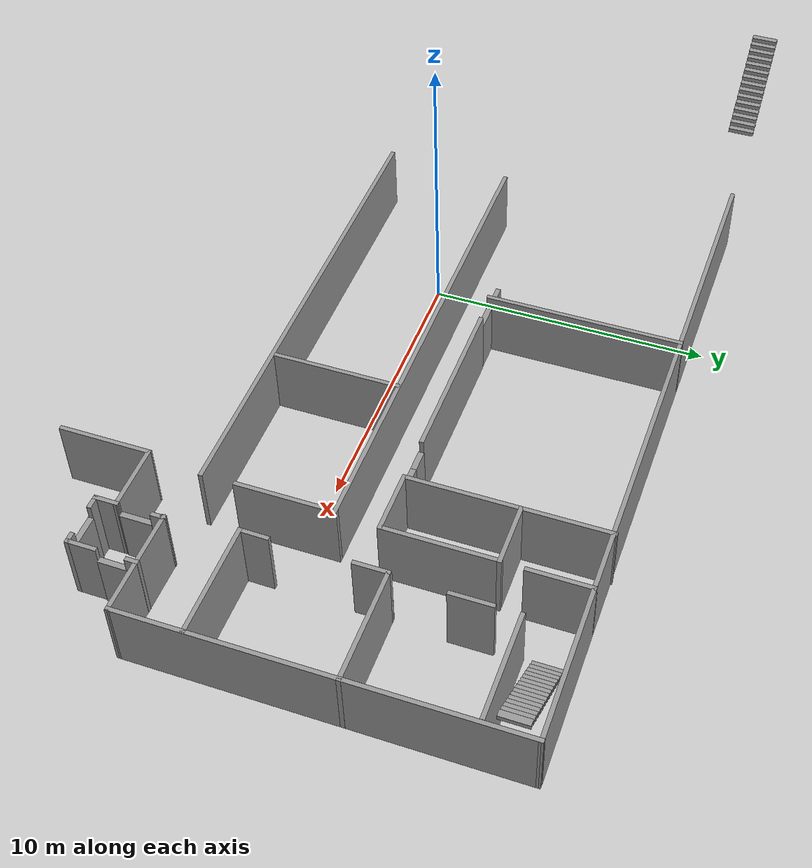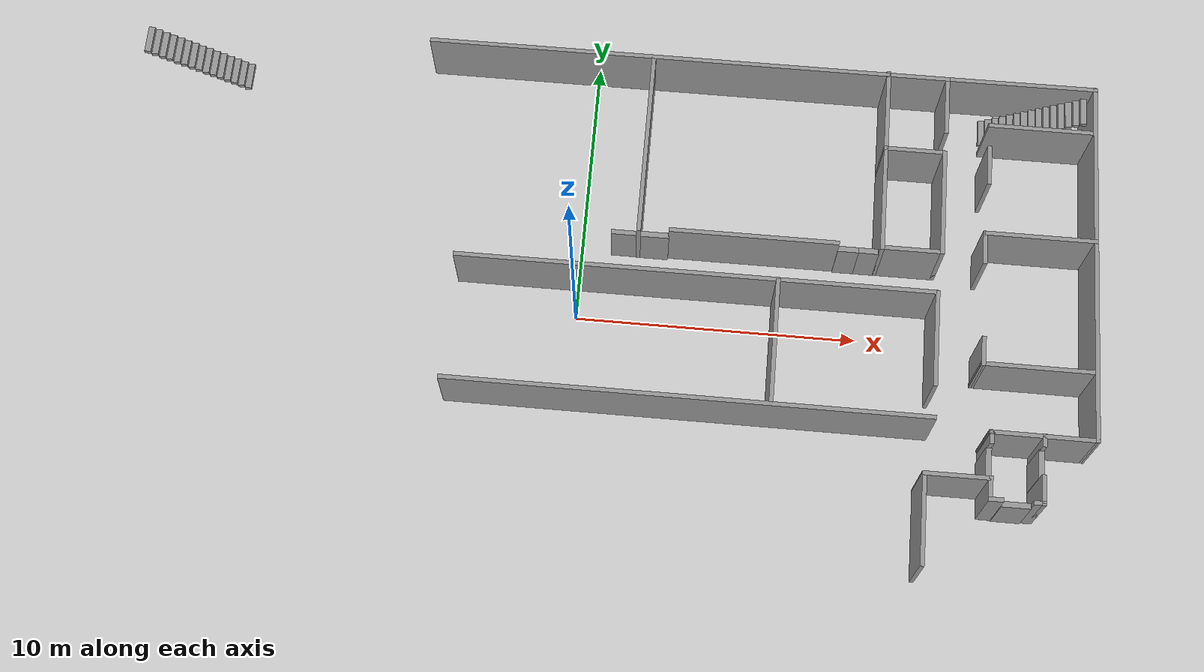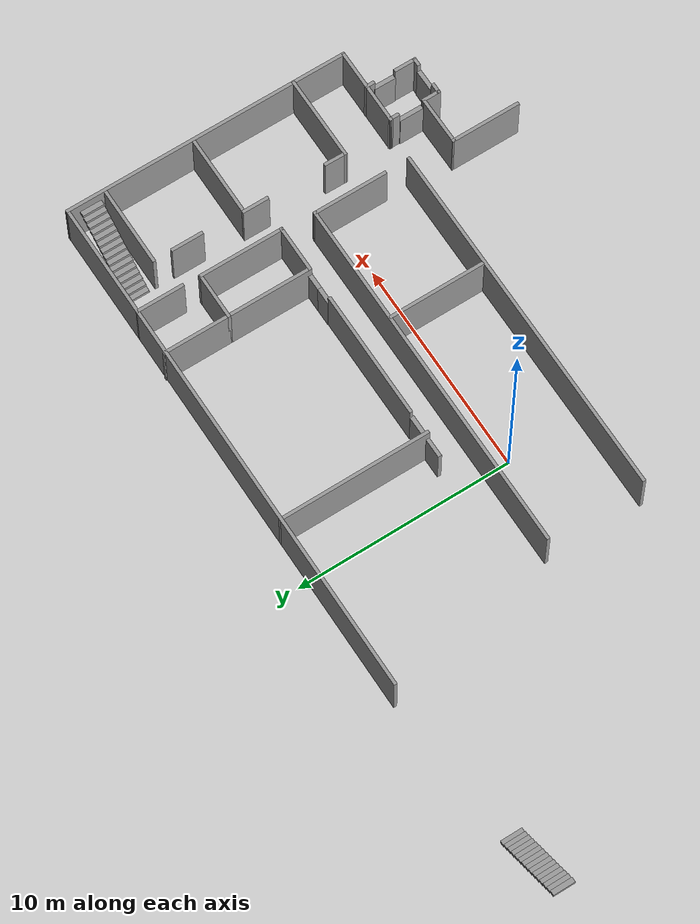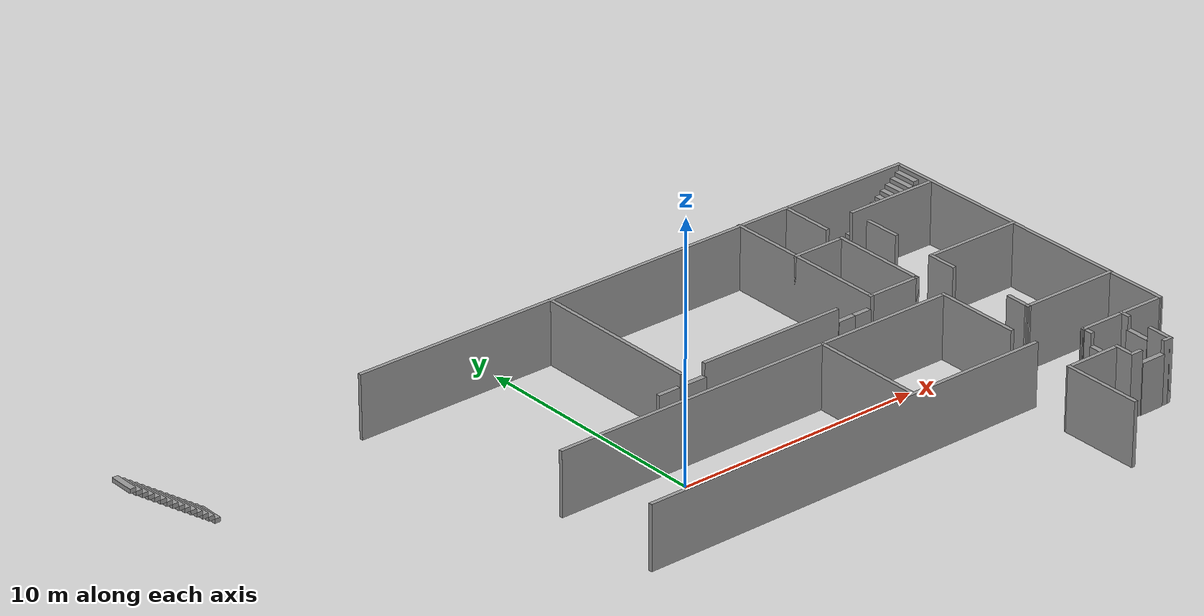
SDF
<sdf version="1.6">
 <world name="default">
  <model name="Devon1st">
   <pose>0.529012 0.529264 0 0 -0 0</pose>
   <link name="Door_0">
    <collision name="Door_0_Collision">
     <geometry><box><size>0.9 0.17 2</size></box></geometry>
     <pose>0 0 1 0 -0 0</pose>
    </collision>
    <visual name="Door_0_Visual">
     <pose>0 0 1 0 -0 0</pose>
     <geometry><box><size>0.9 0.17 2</size></box></geometry>
     <material>
      <script><uri>file://media/materials/scripts/gazebo.material</uri><name>Gazebo/Grey</name></script>
     </material>
    </visual>
    <pose>0.962479 2.12819 0 0 -0 0</pose>
   </link>
   <link name="Door_1">
    <collision name="Door_1_Collision">
     <geometry><box><size>1.01304 0.2 2</size></box></geometry>
     <pose>0 0 1 0 -0 0</pose>
    </collision>
    <visual name="Door_1_Visual">
     <pose>0 0 1 0 -0 0</pose>
     <geometry><box><size>1.01304 0.2 2</size></box></geometry>
     <material>
      <script><uri>file://media/materials/scripts/gazebo.material</uri><name>Gazebo/Grey</name></script>
     </material>
    </visual>
    <pose>2.05919 2.13031 0 0 -0 0</pose>
   </link>
   <link name="Door_11">
    <collision name="Door_11_Collision">
     <geometry><box><size>1.12 0.2 2</size></box></geometry>
     <pose>0 0 1 0 -0 0</pose>
    </collision>
    <visual name="Door_11_Visual">
     <pose>0 0 1 0 -0 0</pose>
     <geometry><box><size>1.12 0.2 2</size></box></geometry>
     <material>
      <script><uri>file://media/materials/scripts/gazebo.material</uri><name>Gazebo/Grey</name></script>
     </material>
    </visual>
    <pose>13.9457 -5.24793 0 0 -0 1.5708</pose>
   </link>
   <link name="Door_12">
    <collision name="Door_12_Collision">
     <geometry><box><size>1.0094 0.2 2</size></box></geometry>
     <pose>0 0 1 0 -0 0</pose>
    </collision>
    <visual name="Door_12_Visual">
     <pose>0 0 1 0 -0 0</pose>
     <geometry><box><size>1.0094 0.2 2</size></box></geometry>
     <material>
      <script><uri>file://media/materials/scripts/gazebo.material</uri><name>Gazebo/Grey</name></script>
     </material>
    </visual>
    <pose>15.7353 -5.11263 0 0 -0 1.56332</pose>
   </link>
   <link name="Door_13">
    <collision name="Door_13_Collision">
     <geometry><box><size>1.01 0.2 2</size></box></geometry>
     <pose>0 0 1 0 -0 0</pose>
    </collision>
    <visual name="Door_13_Visual">
     <pose>0 0 1 0 -0 0</pose>
     <geometry><box><size>1.01 0.2 2</size></box></geometry>
     <material>
      <script><uri>file://media/materials/scripts/gazebo.material</uri><name>Gazebo/Grey</name></script>
     </material>
    </visual>
    <pose>14.8957 -6.60293 0 0 -0 0</pose>
   </link>
   <link name="Door_5">
    <collision name="Door_5_Collision">
     <geometry><box><size>0.745 0.2 2</size></box></geometry>
     <pose>0 0 1 0 -0 0</pose>
    </collision>
    <visual name="Door_5_Visual">
     <pose>0 0 1 0 -0 0</pose>
     <geometry><box><size>0.745 0.2 2</size></box></geometry>
     <material>
      <script><uri>file://media/materials/scripts/gazebo.material</uri><name>Gazebo/Grey</name></script>
     </material>
    </visual>
    <pose>8.90588 2.1621 0 0 -0 0</pose>
   </link>
   <link name="Door_6">
    <collision name="Door_6_Collision">
     <geometry><box><size>0.71 0.2 2</size></box></geometry>
     <pose>0 0 1 0 -0 0</pose>
    </collision>
    <visual name="Door_6_Visual">
     <pose>0 0 1 0 -0 0</pose>
     <geometry><box><size>0.71 0.2 2</size></box></geometry>
     <material>
      <script><uri>file://media/materials/scripts/gazebo.material</uri><name>Gazebo/Grey</name></script>
     </material>
    </visual>
    <pose>9.63338 2.1621 0 0 -0 0</pose>
   </link>
   <link name="Stairs_3">
    <visual name="Stairs_3_Visual_0">
     <pose>13.8125 8.06468 0.083333 0 -0 1.5708</pose>
     <geometry><box><size>1 0.233333 0.166667</size></box></geometry>
     <material>
      <script><uri>file://media/materials/scripts/gazebo.material</uri><name>Gazebo/Grey</name></script>
      <ambient>1 1 1 1</ambient>
     </material>
    </visual>
    <collision name="Stairs_3_Collision_0">
     <geometry><box><size>1 0.233333 0.166667</size></box></geometry>
     <pose>13.8125 8.06468 0.083333 0 -0 1.5708</pose>
    </collision>
    <visual name="Stairs_3_Visual_1">
     <pose>14.0458 8.06468 0.25 0 -0 1.5708</pose>
     <geometry><box><size>1 0.233333 0.166667</size></box></geometry>
     <material>
      <script><uri>file://media/materials/scripts/gazebo.material</uri><name>Gazebo/Grey</name></script>
      <ambient>1 1 1 1</ambient>
     </material>
    </visual>
    <collision name="Stairs_3_Collision_1">
     <geometry><box><size>1 0.233333 0.166667</size></box></geometry>
     <pose>14.0458 8.06468 0.25 0 -0 1.5708</pose>
    </collision>
    <visual name="Stairs_3_Visual_2">
     <pose>14.2792 8.06468 0.416667 0 -0 1.5708</pose>
     <geometry><box><size>1 0.233333 0.166667</size></box></geometry>
     <material>
      <script><uri>file://media/materials/scripts/gazebo.material</uri><name>Gazebo/Grey</name></script>
      <ambient>1 1 1 1</ambient>
     </material>
    </visual>
    <collision name="Stairs_3_Collision_2">
     <geometry><box><size>1 0.233333 0.166667</size></box></geometry>
     <pose>14.2792 8.06468 0.416667 0 -0 1.5708</pose>
    </collision>
    <visual name="Stairs_3_Visual_3">
     <pose>14.5125 8.06468 0.583333 0 -0 1.5708</pose>
     <geometry><box><size>1 0.233333 0.166667</size></box></geometry>
     <material>
      <script><uri>file://media/materials/scripts/gazebo.material</uri><name>Gazebo/Grey</name></script>
      <ambient>1 1 1 1</ambient>
     </material>
    </visual>
    <collision name="Stairs_3_Collision_3">
     <geometry><box><size>1 0.233333 0.166667</size></box></geometry>
     <pose>14.5125 8.06468 0.583333 0 -0 1.5708</pose>
    </collision>
    <visual name="Stairs_3_Visual_4">
     <pose>14.7458 8.06468 0.75 0 -0 1.5708</pose>
     <geometry><box><size>1 0.233333 0.166667</size></box></geometry>
     <material>
      <script><uri>file://media/materials/scripts/gazebo.material</uri><name>Gazebo/Grey</name></script>
      <ambient>1 1 1 1</ambient>
     </material>
    </visual>
    <collision name="Stairs_3_Collision_4">
     <geometry><box><size>1 0.233333 0.166667</size></box></geometry>
     <pose>14.7458 8.06468 0.75 0 -0 1.5708</pose>
    </collision>
    <visual name="Stairs_3_Visual_5">
     <pose>14.9792 8.06468 0.916667 0 -0 1.5708</pose>
     <geometry><box><size>1 0.233333 0.166667</size></box></geometry>
     <material>
      <script><uri>file://media/materials/scripts/gazebo.material</uri><name>Gazebo/Grey</name></script>
      <ambient>1 1 1 1</ambient>
     </material>
    </visual>
    <collision name="Stairs_3_Collision_5">
     <geometry><box><size>1 0.233333 0.166667</size></box></geometry>
     <pose>14.9792 8.06468 0.916667 0 -0 1.5708</pose>
    </collision>
    <visual name="Stairs_3_Visual_6">
     <pose>15.2125 8.06468 1.08333 0 -0 1.5708</pose>
     <geometry><box><size>1 0.233333 0.166667</size></box></geometry>
     <material>
      <script><uri>file://media/materials/scripts/gazebo.material</uri><name>Gazebo/Grey</name></script>
      <ambient>1 1 1 1</ambient>
     </material>
    </visual>
    <collision name="Stairs_3_Collision_6">
     <geometry><box><size>1 0.233333 0.166667</size></box></geometry>
     <pose>15.2125 8.06468 1.08333 0 -0 1.5708</pose>
    </collision>
    <visual name="Stairs_3_Visual_7">
     <pose>15.4458 8.06468 1.25 0 -0 1.5708</pose>
     <geometry><box><size>1 0.233333 0.166667</size></box></geometry>
     <material>
      <script><uri>file://media/materials/scripts/gazebo.material</uri><name>Gazebo/Grey</name></script>
      <ambient>1 1 1 1</ambient>
     </material>
    </visual>
    <collision name="Stairs_3_Collision_7">
     <geometry><box><size>1 0.233333 0.166667</size></box></geometry>
     <pose>15.4458 8.06468 1.25 0 -0 1.5708</pose>
    </collision>
    <visual name="Stairs_3_Visual_8">
     <pose>15.6792 8.06468 1.41667 0 -0 1.5708</pose>
     <geometry><box><size>1 0.233333 0.166667</size></box></geometry>
     <material>
      <script><uri>file://media/materials/scripts/gazebo.material</uri><name>Gazebo/Grey</name></script>
      <ambient>1 1 1 1</ambient>
     </material>
    </visual>
    <collision name="Stairs_3_Collision_8">
     <geometry><box><size>1 0.233333 0.166667</size></box></geometry>
     <pose>15.6792 8.06468 1.41667 0 -0 1.5708</pose>
    </collision>
    <visual name="Stairs_3_Visual_9">
     <pose>15.9125 8.06468 1.58333 0 -0 1.5708</pose>
     <geometry><box><size>1 0.233333 0.166667</size></box></geometry>
     <material>
      <script><uri>file://media/materials/scripts/gazebo.material</uri><name>Gazebo/Grey</name></script>
      <ambient>1 1 1 1</ambient>
     </material>
    </visual>
    <collision name="Stairs_3_Collision_9">
     <geometry><box><size>1 0.233333 0.166667</size></box></geometry>
     <pose>15.9125 8.06468 1.58333 0 -0 1.5708</pose>
    </collision>
    <visual name="Stairs_3_Visual_10">
     <pose>16.1458 8.06468 1.75 0 -0 1.5708</pose>
     <geometry><box><size>1 0.233333 0.166667</size></box></geometry>
     <material>
      <script><uri>file://media/materials/scripts/gazebo.material</uri><name>Gazebo/Grey</name></script>
      <ambient>1 1 1 1</ambient>
     </material>
    </visual>
    <collision name="Stairs_3_Collision_10">
     <geometry><box><size>1 0.233333 0.166667</size></box></geometry>
     <pose>16.1458 8.06468 1.75 0 -0 1.5708</pose>
    </collision>
    <visual name="Stairs_3_Visual_11">
     <pose>16.3792 8.06468 1.91667 0 -0 1.5708</pose>
     <geometry><box><size>1 0.233333 0.166667</size></box></geometry>
     <material>
      <script><uri>file://media/materials/scripts/gazebo.material</uri><name>Gazebo/Grey</name></script>
      <ambient>1 1 1 1</ambient>
     </material>
    </visual>
    <collision name="Stairs_3_Collision_11">
     <geometry><box><size>1 0.233333 0.166667</size></box></geometry>
     <pose>16.3792 8.06468 1.91667 0 -0 1.5708</pose>
    </collision>
    <visual name="Stairs_3_Visual_12">
     <pose>16.6125 8.06468 2.08333 0 -0 1.5708</pose>
     <geometry><box><size>1 0.233333 0.166667</size></box></geometry>
     <material>
      <script><uri>file://media/materials/scripts/gazebo.material</uri><name>Gazebo/Grey</name></script>
      <ambient>1 1 1 1</ambient>
     </material>
    </visual>
    <collision name="Stairs_3_Collision_12">
     <geometry><box><size>1 0.233333 0.166667</size></box></geometry>
     <pose>16.6125 8.06468 2.08333 0 -0 1.5708</pose>
    </collision>
    <visual name="Stairs_3_Visual_13">
     <pose>16.8458 8.06468 2.25 0 -0 1.5708</pose>
     <geometry><box><size>1 0.233333 0.166667</size></box></geometry>
     <material>
      <script><uri>file://media/materials/scripts/gazebo.material</uri><name>Gazebo/Grey</name></script>
      <ambient>1 1 1 1</ambient>
     </material>
    </visual>
    <collision name="Stairs_3_Collision_13">
     <geometry><box><size>1 0.233333 0.166667</size></box></geometry>
     <pose>16.8458 8.06468 2.25 0 -0 1.5708</pose>
    </collision>
    <visual name="Stairs_3_Visual_14">
     <pose>17.0792 8.06468 2.41667 0 -0 1.5708</pose>
     <geometry><box><size>1 0.233333 0.166667</size></box></geometry>
     <material>
      <script><uri>file://media/materials/scripts/gazebo.material</uri><name>Gazebo/Grey</name></script>
      <ambient>1 1 1 1</ambient>
     </material>
    </visual>
    <collision name="Stairs_3_Collision_14">
     <geometry><box><size>1 0.233333 0.166667</size></box></geometry>
     <pose>17.0792 8.06468 2.41667 0 -0 1.5708</pose>
    </collision>
   </link>
   <link name="Stairs_4">
    <visual name="Stairs_4_Visual_0">
     <pose>-13.7119 8.07177 0.083333 0 -0 -1.5708</pose>
     <geometry><box><size>1 0.233333 0.166667</size></box></geometry>
     <material>
      <script><uri>file://media/materials/scripts/gazebo.material</uri><name>Gazebo/Grey</name></script>
      <ambient>1 1 1 1</ambient>
     </material>
    </visual>
    <collision name="Stairs_4_Collision_0">
     <geometry><box><size>1 0.233333 0.166667</size></box></geometry>
     <pose>-13.7119 8.07177 0.083333 0 -0 -1.5708</pose>
    </collision>
    <visual name="Stairs_4_Visual_1">
     <pose>-13.9452 8.07177 0.25 0 -0 -1.5708</pose>
     <geometry><box><size>1 0.233333 0.166667</size></box></geometry>
     <material>
      <script><uri>file://media/materials/scripts/gazebo.material</uri><name>Gazebo/Grey</name></script>
      <ambient>1 1 1 1</ambient>
     </material>
    </visual>
    <collision name="Stairs_4_Collision_1">
     <geometry><box><size>1 0.233333 0.166667</size></box></geometry>
     <pose>-13.9452 8.07177 0.25 0 -0 -1.5708</pose>
    </collision>
    <visual name="Stairs_4_Visual_2">
     <pose>-14.1786 8.07177 0.416667 0 -0 -1.5708</pose>
     <geometry><box><size>1 0.233333 0.166667</size></box></geometry>
     <material>
      <script><uri>file://media/materials/scripts/gazebo.material</uri><name>Gazebo/Grey</name></script>
      <ambient>1 1 1 1</ambient>
     </material>
    </visual>
    <collision name="Stairs_4_Collision_2">
     <geometry><box><size>1 0.233333 0.166667</size></box></geometry>
     <pose>-14.1786 8.07177 0.416667 0 -0 -1.5708</pose>
    </collision>
    <visual name="Stairs_4_Visual_3">
     <pose>-14.4119 8.07177 0.583333 0 -0 -1.5708</pose>
     <geometry><box><size>1 0.233333 0.166667</size></box></geometry>
     <material>
      <script><uri>file://media/materials/scripts/gazebo.material</uri><name>Gazebo/Grey</name></script>
      <ambient>1 1 1 1</ambient>
     </material>
    </visual>
    <collision name="Stairs_4_Collision_3">
     <geometry><box><size>1 0.233333 0.166667</size></box></geometry>
     <pose>-14.4119 8.07177 0.583333 0 -0 -1.5708</pose>
    </collision>
    <visual name="Stairs_4_Visual_4">
     <pose>-14.6452 8.07177 0.75 0 -0 -1.5708</pose>
     <geometry><box><size>1 0.233333 0.166667</size></box></geometry>
     <material>
      <script><uri>file://media/materials/scripts/gazebo.material</uri><name>Gazebo/Grey</name></script>
      <ambient>1 1 1 1</ambient>
     </material>
    </visual>
    <collision name="Stairs_4_Collision_4">
     <geometry><box><size>1 0.233333 0.166667</size></box></geometry>
     <pose>-14.6452 8.07177 0.75 0 -0 -1.5708</pose>
    </collision>
    <visual name="Stairs_4_Visual_5">
     <pose>-14.8786 8.07177 0.916667 0 -0 -1.5708</pose>
     <geometry><box><size>1 0.233333 0.166667</size></box></geometry>
     <material>
      <script><uri>file://media/materials/scripts/gazebo.material</uri><name>Gazebo/Grey</name></script>
      <ambient>1 1 1 1</ambient>
     </material>
    </visual>
    <collision name="Stairs_4_Collision_5">
     <geometry><box><size>1 0.233333 0.166667</size></box></geometry>
     <pose>-14.8786 8.07177 0.916667 0 -0 -1.5708</pose>
    </collision>
    <visual name="Stairs_4_Visual_6">
     <pose>-15.1119 8.07177 1.08333 0 -0 -1.5708</pose>
     <geometry><box><size>1 0.233333 0.166667</size></box></geometry>
     <material>
      <script><uri>file://media/materials/scripts/gazebo.material</uri><name>Gazebo/Grey</name></script>
      <ambient>1 1 1 1</ambient>
     </material>
    </visual>
    <collision name="Stairs_4_Collision_6">
     <geometry><box><size>1 0.233333 0.166667</size></box></geometry>
     <pose>-15.1119 8.07177 1.08333 0 -0 -1.5708</pose>
    </collision>
    <visual name="Stairs_4_Visual_7">
     <pose>-15.3452 8.07177 1.25 0 -0 -1.5708</pose>
     <geometry><box><size>1 0.233333 0.166667</size></box></geometry>
     <material>
      <script><uri>file://media/materials/scripts/gazebo.material</uri><name>Gazebo/Grey</name></script>
      <ambient>1 1 1 1</ambient>
     </material>
    </visual>
    <collision name="Stairs_4_Collision_7">
     <geometry><box><size>1 0.233333 0.166667</size></box></geometry>
     <pose>-15.3452 8.07177 1.25 0 -0 -1.5708</pose>
    </collision>
    <visual name="Stairs_4_Visual_8">
     <pose>-15.5786 8.07177 1.41667 0 -0 -1.5708</pose>
     <geometry><box><size>1 0.233333 0.166667</size></box></geometry>
     <material>
      <script><uri>file://media/materials/scripts/gazebo.material</uri><name>Gazebo/Grey</name></script>
      <ambient>1 1 1 1</ambient>
     </material>
    </visual>
    <collision name="Stairs_4_Collision_8">
     <geometry><box><size>1 0.233333 0.166667</size></box></geometry>
     <pose>-15.5786 8.07177 1.41667 0 -0 -1.5708</pose>
    </collision>
    <visual name="Stairs_4_Visual_9">
     <pose>-15.8119 8.07177 1.58333 0 -0 -1.5708</pose>
     <geometry><box><size>1 0.233333 0.166667</size></box></geometry>
     <material>
      <script><uri>file://media/materials/scripts/gazebo.material</uri><name>Gazebo/Grey</name></script>
      <ambient>1 1 1 1</ambient>
     </material>
    </visual>
    <collision name="Stairs_4_Collision_9">
     <geometry><box><size>1 0.233333 0.166667</size></box></geometry>
     <pose>-15.8119 8.07177 1.58333 0 -0 -1.5708</pose>
    </collision>
    <visual name="Stairs_4_Visual_10">
     <pose>-16.0452 8.07177 1.75 0 -0 -1.5708</pose>
     <geometry><box><size>1 0.233333 0.166667</size></box></geometry>
     <material>
      <script><uri>file://media/materials/scripts/gazebo.material</uri><name>Gazebo/Grey</name></script>
      <ambient>1 1 1 1</ambient>
     </material>
    </visual>
    <collision name="Stairs_4_Collision_10">
     <geometry><box><size>1 0.233333 0.166667</size></box></geometry>
     <pose>-16.0452 8.07177 1.75 0 -0 -1.5708</pose>
    </collision>
    <visual name="Stairs_4_Visual_11">
     <pose>-16.2786 8.07177 1.91667 0 -0 -1.5708</pose>
     <geometry><box><size>1 0.233333 0.166667</size></box></geometry>
     <material>
      <script><uri>file://media/materials/scripts/gazebo.material</uri><name>Gazebo/Grey</name></script>
      <ambient>1 1 1 1</ambient>
     </material>
    </visual>
    <collision name="Stairs_4_Collision_11">
     <geometry><box><size>1 0.233333 0.166667</size></box></geometry>
     <pose>-16.2786 8.07177 1.91667 0 -0 -1.5708</pose>
    </collision>
    <visual name="Stairs_4_Visual_12">
     <pose>-16.5119 8.07177 2.08333 0 -0 -1.5708</pose>
     <geometry><box><size>1 0.233333 0.166667</size></box></geometry>
     <material>
      <script><uri>file://media/materials/scripts/gazebo.material</uri><name>Gazebo/Grey</name></script>
      <ambient>1 1 1 1</ambient>
     </material>
    </visual>
    <collision name="Stairs_4_Collision_12">
     <geometry><box><size>1 0.233333 0.166667</size></box></geometry>
     <pose>-16.5119 8.07177 2.08333 0 -0 -1.5708</pose>
    </collision>
    <visual name="Stairs_4_Visual_13">
     <pose>-16.7452 8.07177 2.25 0 -0 -1.5708</pose>
     <geometry><box><size>1 0.233333 0.166667</size></box></geometry>
     <material>
      <script><uri>file://media/materials/scripts/gazebo.material</uri><name>Gazebo/Grey</name></script>
      <ambient>1 1 1 1</ambient>
     </material>
    </visual>
    <collision name="Stairs_4_Collision_13">
     <geometry><box><size>1 0.233333 0.166667</size></box></geometry>
     <pose>-16.7452 8.07177 2.25 0 -0 -1.5708</pose>
    </collision>
    <visual name="Stairs_4_Visual_14">
     <pose>-16.9786 8.07177 2.41667 0 -0 -1.5708</pose>
     <geometry><box><size>1 0.233333 0.166667</size></box></geometry>
     <material>
      <script><uri>file://media/materials/scripts/gazebo.material</uri><name>Gazebo/Grey</name></script>
      <ambient>1 1 1 1</ambient>
     </material>
    </visual>
    <collision name="Stairs_4_Collision_14">
     <geometry><box><size>1 0.233333 0.166667</size></box></geometry>
     <pose>-16.9786 8.07177 2.41667 0 -0 -1.5708</pose>
    </collision>
   </link>
   <link name="Wall_105">
    <collision name="Wall_105_Collision">
     <geometry><box><size>4 0.15 2.5</size></box></geometry>
     <pose>0 0 1.25 0 -0 0</pose>
    </collision>
    <visual name="Wall_105_Visual">
     <pose>0 0 1.25 0 -0 0</pose>
     <geometry><box><size>4 0.15 2.5</size></box></geometry>
     <material>
      <script><uri>file://media/materials/scripts/gazebo.material</uri><name>Gazebo/Grey</name></script>
      <ambient>1 1 1 1</ambient>
     </material>
    </visual>
    <pose>15.5593 -1.85561 0 0 -0 0</pose>
   </link>
   <link name="Wall_107">
    <collision name="Wall_107_Collision">
     <geometry><box><size>1.25 0.15 2.5</size></box></geometry>
     <pose>0 0 1.25 0 -0 0</pose>
    </collision>
    <visual name="Wall_107_Visual">
     <pose>0 0 1.25 0 -0 0</pose>
     <geometry><box><size>1.25 0.15 2.5</size></box></geometry>
     <material>
      <script><uri>file://media/materials/scripts/gazebo.material</uri><name>Gazebo/Grey</name></script>
      <ambient>1 1 1 1</ambient>
     </material>
    </visual>
    <pose>13.6356 2.45036 0 0 0 -1.5708</pose>
   </link>
   <link name="Wall_109">
    <collision name="Wall_109_Collision">
     <geometry><box><size>1.07007 0.15 2.5</size></box></geometry>
     <pose>0 0 1.25 0 -0 0</pose>
    </collision>
    <visual name="Wall_109_Visual">
     <pose>0 0 1.25 0 -0 0</pose>
     <geometry><box><size>1.07007 0.15 2.5</size></box></geometry>
     <material>
      <script><uri>file://media/materials/scripts/gazebo.material</uri><name>Gazebo/Grey</name></script>
      <ambient>1 1 1 1</ambient>
     </material>
    </visual>
    <pose>13.6401 -1.39561 0 0 0 -1.5833</pose>
   </link>
   <link name="Wall_112">
    <collision name="Wall_112_Collision">
     <geometry><box><size>0.867664 0.15 2.5</size></box></geometry>
     <pose>0 0 1.25 0 -0 0</pose>
    </collision>
    <visual name="Wall_112_Visual">
     <pose>0 0 1.25 0 -0 0</pose>
     <geometry><box><size>0.867664 0.15 2.5</size></box></geometry>
     <material>
      <script><uri>file://media/materials/scripts/gazebo.material</uri><name>Gazebo/Grey</name></script>
      <ambient>1 1 1 1</ambient>
     </material>
    </visual>
    <pose>13.9429 -6.24406 0 0 0 -1.5708</pose>
   </link>
   <link name="Wall_113">
    <collision name="Wall_113_Collision">
     <geometry><box><size>0.513155 0.15 2.5</size></box></geometry>
     <pose>0 0 1.25 0 -0 0</pose>
    </collision>
    <visual name="Wall_113_Visual">
     <pose>0 0 1.25 0 -0 0</pose>
     <geometry><box><size>0.513155 0.15 2.5</size></box></geometry>
     <material>
      <script><uri>file://media/materials/scripts/gazebo.material</uri><name>Gazebo/Grey</name></script>
      <ambient>1 1 1 1</ambient>
     </material>
    </visual>
    <pose>14.1245 -6.6029 0 0 -0 0</pose>
   </link>
   <link name="Wall_115">
    <collision name="Wall_115_Collision">
     <geometry><box><size>0.469922 0.15 2.5</size></box></geometry>
     <pose>0 0 1.25 0 -0 0</pose>
    </collision>
    <visual name="Wall_115_Visual">
     <pose>0 0 1.25 0 -0 0</pose>
     <geometry><box><size>0.469922 0.15 2.5</size></box></geometry>
     <material>
      <script><uri>file://media/materials/scripts/gazebo.material</uri><name>Gazebo/Grey</name></script>
      <ambient>1 1 1 1</ambient>
     </material>
    </visual>
    <pose>13.9602 -4.45423 0 0 -0 1.5708</pose>
   </link>
   <link name="Wall_116">
    <collision name="Wall_116_Collision">
     <geometry><box><size>0.15 0.15 2.5</size></box></geometry>
     <pose>0 0 1.25 0 -0 0</pose>
    </collision>
    <visual name="Wall_116_Visual">
     <pose>0 0 1.25 0 -0 0</pose>
     <geometry><box><size>0.15 0.15 2.5</size></box></geometry>
     <material>
      <script><uri>file://media/materials/scripts/gazebo.material</uri><name>Gazebo/Grey</name></script>
      <ambient>1 1 1 1</ambient>
     </material>
    </visual>
    <pose>13.9602 -4.29427 0 0 -0 0</pose>
   </link>
   <link name="Wall_117">
    <collision name="Wall_117_Collision">
     <geometry><box><size>0.181176 0.15 2.5</size></box></geometry>
     <pose>0 0 1.25 0 -0 0</pose>
    </collision>
    <visual name="Wall_117_Visual">
     <pose>0 0 1.25 0 -0 0</pose>
     <geometry><box><size>0.181176 0.15 2.5</size></box></geometry>
     <material>
      <script><uri>file://media/materials/scripts/gazebo.material</uri><name>Gazebo/Grey</name></script>
      <ambient>1 1 1 1</ambient>
     </material>
    </visual>
    <pose>13.9516 -4.2813 0 0 -0 2.1588</pose>
   </link>
   <link name="Wall_119">
    <collision name="Wall_119_Collision">
     <geometry><box><size>0.452629 0.15 2.5</size></box></geometry>
     <pose>0 0 1.25 0 -0 0</pose>
    </collision>
    <visual name="Wall_119_Visual">
     <pose>0 0 1.25 0 -0 0</pose>
     <geometry><box><size>0.452629 0.15 2.5</size></box></geometry>
     <material>
      <script><uri>file://media/materials/scripts/gazebo.material</uri><name>Gazebo/Grey</name></script>
      <ambient>1 1 1 1</ambient>
     </material>
    </visual>
    <pose>15.7414 -4.41964 0 0 0 -1.5708</pose>
   </link>
   <link name="Wall_121">
    <collision name="Wall_121_Collision">
     <geometry><box><size>1.06654 0.15 2.5</size></box></geometry>
     <pose>0 0 1.25 0 -0 0</pose>
    </collision>
    <visual name="Wall_121_Visual">
     <pose>0 0 1.25 0 -0 0</pose>
     <geometry><box><size>1.06654 0.15 2.5</size></box></geometry>
     <material>
      <script><uri>file://media/materials/scripts/gazebo.material</uri><name>Gazebo/Grey</name></script>
      <ambient>1 1 1 1</ambient>
     </material>
    </visual>
    <pose>15.7241 -6.14463 0 0 0 -1.5708</pose>
   </link>
   <link name="Wall_122">
    <collision name="Wall_122_Collision">
     <geometry><box><size>0.409541 0.15 2.5</size></box></geometry>
     <pose>0 0 1.25 0 -0 0</pose>
    </collision>
    <visual name="Wall_122_Visual">
     <pose>0 0 1.25 0 -0 0</pose>
     <geometry><box><size>0.409541 0.15 2.5</size></box></geometry>
     <material>
      <script><uri>file://media/materials/scripts/gazebo.material</uri><name>Gazebo/Grey</name></script>
      <ambient>1 1 1 1</ambient>
     </material>
    </visual>
    <pose>15.5944 -6.6029 0 0 -0 3.14159</pose>
   </link>
   <link name="Wall_45">
    <collision name="Wall_45_Collision">
     <geometry><box><size>19 0.15 2.5</size></box></geometry>
     <pose>0 0 1.25 0 -0 0</pose>
    </collision>
    <visual name="Wall_45_Visual">
     <pose>0 0 1.25 0 -0 0</pose>
     <geometry><box><size>19 0.15 2.5</size></box></geometry>
     <material>
      <script><uri>file://media/materials/scripts/gazebo.material</uri><name>Gazebo/Grey</name></script>
      <ambient>1 1 1 1</ambient>
     </material>
    </visual>
    <pose>2.75407 8.94691 0 0 -0 0</pose>
   </link>
   <link name="Wall_46">
    <collision name="Wall_46_Collision">
     <geometry><box><size>2.25 0.15 2.5</size></box></geometry>
     <pose>0 0 1.25 0 -0 0</pose>
    </collision>
    <visual name="Wall_46_Visual">
     <pose>0 0 1.25 0 -0 0</pose>
     <geometry><box><size>2.25 0.15 2.5</size></box></geometry>
     <material>
      <script><uri>file://media/materials/scripts/gazebo.material</uri><name>Gazebo/Grey</name></script>
      <ambient>1 1 1 1</ambient>
     </material>
    </visual>
    <pose>12.1791 7.89691 0 0 0 -1.5708</pose>
   </link>
   <link name="Wall_48">
    <collision name="Wall_48_Collision">
     <geometry><box><size>7 0.15 2.5</size></box></geometry>
     <pose>0 0 1.25 0 -0 0</pose>
    </collision>
    <visual name="Wall_48_Visual">
     <pose>0 0 1.25 0 -0 0</pose>
     <geometry><box><size>7 0.15 2.5</size></box></geometry>
     <material>
      <script><uri>file://media/materials/scripts/gazebo.material</uri><name>Gazebo/Grey</name></script>
      <ambient>1 1 1 1</ambient>
     </material>
    </visual>
    <pose>10.0411 5.56826 0 0 0 -1.5708</pose>
   </link>
   <link name="Wall_49">
    <collision name="Wall_49_Collision">
     <geometry><box><size>2.25 0.15 2.5</size></box></geometry>
     <pose>0 0 1.25 0 -0 0</pose>
    </collision>
    <visual name="Wall_49_Visual">
     <pose>0 0 1.25 0 -0 0</pose>
     <geometry><box><size>2.25 0.15 2.5</size></box></geometry>
     <material>
      <script><uri>file://media/materials/scripts/gazebo.material</uri><name>Gazebo/Grey</name></script>
      <ambient>1 1 1 1</ambient>
     </material>
    </visual>
    <pose>11.0911 2.14326 0 0 -0 0</pose>
   </link>
   <link name="Wall_50">
    <collision name="Wall_50_Collision">
     <geometry><box><size>4 0.15 2.5</size></box></geometry>
     <pose>0 0 1.25 0 -0 0</pose>
    </collision>
    <visual name="Wall_50_Visual">
     <pose>0 0 1.25 0 -0 0</pose>
     <geometry><box><size>4 0.15 2.5</size></box></geometry>
     <material>
      <script><uri>file://media/materials/scripts/gazebo.material</uri><name>Gazebo/Grey</name></script>
      <ambient>1 1 1 1</ambient>
     </material>
    </visual>
    <pose>12.1411 4.06826 0 0 -0 1.5708</pose>
   </link>
   <link name="Wall_51">
    <collision name="Wall_51_Collision">
     <geometry><box><size>2.25 0.15 2.5</size></box></geometry>
     <pose>0 0 1.25 0 -0 0</pose>
    </collision>
    <visual name="Wall_51_Visual">
     <pose>0 0 1.25 0 -0 0</pose>
     <geometry><box><size>2.25 0.15 2.5</size></box></geometry>
     <material>
      <script><uri>file://media/materials/scripts/gazebo.material</uri><name>Gazebo/Grey</name></script>
      <ambient>1 1 1 1</ambient>
     </material>
    </visual>
    <pose>11.0911 5.99326 0 0 -0 3.14159</pose>
   </link>
   <link name="Wall_53">
    <collision name="Wall_53_Collision">
     <geometry><box><size>6.9967 0.15 2.5</size></box></geometry>
     <pose>0 0 1.25 0 -0 0</pose>
    </collision>
    <visual name="Wall_53_Visual">
     <pose>0 0 1.25 0 -0 0</pose>
     <geometry><box><size>6.9967 0.15 2.5</size></box></geometry>
     <material>
      <script><uri>file://media/materials/scripts/gazebo.material</uri><name>Gazebo/Grey</name></script>
      <ambient>1 1 1 1</ambient>
     </material>
    </visual>
    <pose>1.4828 5.52367 0 0 0 -1.5708</pose>
   </link>
   <link name="Wall_55">
    <collision name="Wall_55_Collision">
     <geometry><box><size>6 0.15 2.5</size></box></geometry>
     <pose>0 0 1.25 0 -0 0</pose>
    </collision>
    <visual name="Wall_55_Visual">
     <pose>0 0 1.25 0 -0 0</pose>
     <geometry><box><size>6 0.15 2.5</size></box></geometry>
     <material>
      <script><uri>file://media/materials/scripts/gazebo.material</uri><name>Gazebo/Grey</name></script>
      <ambient>1 1 1 1</ambient>
     </material>
    </visual>
    <pose>5.5412 2.16974 0 0 -0 0</pose>
   </link>
   <link name="Wall_59">
    <collision name="Wall_59_Collision">
     <geometry><box><size>17 0.15 2.5</size></box></geometry>
     <pose>0 0 1.25 0 -0 0</pose>
    </collision>
    <visual name="Wall_59_Visual">
     <pose>0 0 1.25 0 -0 0</pose>
     <geometry><box><size>17 0.15 2.5</size></box></geometry>
     <material>
      <script><uri>file://media/materials/scripts/gazebo.material</uri><name>Gazebo/Grey</name></script>
      <ambient>1 1 1 1</ambient>
     </material>
    </visual>
    <pose>3.59407 0.617918 0 0 -0 0</pose>
   </link>
   <link name="Wall_60">
    <collision name="Wall_60_Collision">
     <geometry><box><size>3.5 0.15 2.5</size></box></geometry>
     <pose>0 0 1.25 0 -0 0</pose>
    </collision>
    <visual name="Wall_60_Visual">
     <pose>0 0 1.25 0 -0 0</pose>
     <geometry><box><size>3.5 0.15 2.5</size></box></geometry>
     <material>
      <script><uri>file://media/materials/scripts/gazebo.material</uri><name>Gazebo/Grey</name></script>
      <ambient>1 1 1 1</ambient>
     </material>
    </visual>
    <pose>12.0191 -1.05708 0 0 0 -1.5708</pose>
   </link>
   <link name="Wall_62">
    <collision name="Wall_62_Collision">
     <geometry><box><size>17 0.15 2.5</size></box></geometry>
     <pose>0 0 1.25 0 -0 0</pose>
    </collision>
    <visual name="Wall_62_Visual">
     <pose>0 0 1.25 0 -0 0</pose>
     <geometry><box><size>17 0.15 2.5</size></box></geometry>
     <material>
      <script><uri>file://media/materials/scripts/gazebo.material</uri><name>Gazebo/Grey</name></script>
      <ambient>1 1 1 1</ambient>
     </material>
    </visual>
    <pose>3.59469 -3.92014 0 0 -0 3.14159</pose>
   </link>
   <link name="Wall_67">
    <collision name="Wall_67_Collision">
     <geometry><box><size>4.5 0.15 2.5</size></box></geometry>
     <pose>0 0 1.25 0 -0 0</pose>
    </collision>
    <visual name="Wall_67_Visual">
     <pose>0 0 1.25 0 -0 0</pose>
     <geometry><box><size>4.5 0.15 2.5</size></box></geometry>
     <material>
      <script><uri>file://media/materials/scripts/gazebo.material</uri><name>Gazebo/Grey</name></script>
      <ambient>1 1 1 1</ambient>
     </material>
    </visual>
    <pose>6.47737 -1.61016 0 0 0 -1.5708</pose>
   </link>
   <link name="Wall_71">
    <collision name="Wall_71_Collision">
     <geometry><box><size>3.25 0.15 2.5</size></box></geometry>
     <pose>0 0 1.25 0 -0 0</pose>
    </collision>
    <visual name="Wall_71_Visual">
     <pose>0 0 1.25 0 -0 0</pose>
     <geometry><box><size>3.25 0.15 2.5</size></box></geometry>
     <material>
      <script><uri>file://media/materials/scripts/gazebo.material</uri><name>Gazebo/Grey</name></script>
      <ambient>1 1 1 1</ambient>
     </material>
    </visual>
    <pose>11.7368 -7.44327 0 0 -0 1.5708</pose>
   </link>
   <link name="Wall_72">
    <collision name="Wall_72_Collision">
     <geometry><box><size>2.35613 0.15 2.5</size></box></geometry>
     <pose>0 0 1.25 0 -0 0</pose>
    </collision>
    <visual name="Wall_72_Visual">
     <pose>0 0 1.25 0 -0 0</pose>
     <geometry><box><size>2.35613 0.15 2.5</size></box></geometry>
     <material>
      <script><uri>file://media/materials/scripts/gazebo.material</uri><name>Gazebo/Grey</name></script>
      <ambient>1 1 1 1</ambient>
     </material>
    </visual>
    <pose>12.8399 -5.88925 0 0 -0 0.003642</pose>
   </link>
   <link name="Wall_82">
    <collision name="Wall_82_Collision">
     <geometry><box><size>3.72975 0.15 2.5</size></box></geometry>
     <pose>0 0 1.25 0 -0 0</pose>
    </collision>
    <visual name="Wall_82_Visual">
     <pose>0 0 1.25 0 -0 0</pose>
     <geometry><box><size>3.72975 0.15 2.5</size></box></geometry>
     <material>
      <script><uri>file://media/materials/scripts/gazebo.material</uri><name>Gazebo/Grey</name></script>
      <ambient>1 1 1 1</ambient>
     </material>
    </visual>
    <pose>15.7328 -4.27477 0 0 0 -0.003602</pose>
   </link>
   <link name="Wall_83">
    <collision name="Wall_83_Collision">
     <geometry><box><size>13.3958 0.15 2.5</size></box></geometry>
     <pose>0 0 1.25 0 -0 0</pose>
    </collision>
    <visual name="Wall_83_Visual">
     <pose>0 0 1.25 0 -0 0</pose>
     <geometry><box><size>13.3958 0.15 2.5</size></box></geometry>
     <material>
      <script><uri>file://media/materials/scripts/gazebo.material</uri><name>Gazebo/Grey</name></script>
      <ambient>1 1 1 1</ambient>
     </material>
    </visual>
    <pose>17.5168 2.34167 0 0 -0 1.57169</pose>
   </link>
   <link name="Wall_85">
    <collision name="Wall_85_Collision">
     <geometry><box><size>5.48181 0.15 2.5</size></box></geometry>
     <pose>0 0 1.25 0 -0 0</pose>
    </collision>
    <visual name="Wall_85_Visual">
     <pose>0 0 1.25 0 -0 0</pose>
     <geometry><box><size>5.48181 0.15 2.5</size></box></geometry>
     <material>
      <script><uri>file://media/materials/scripts/gazebo.material</uri><name>Gazebo/Grey</name></script>
      <ambient>1 1 1 1</ambient>
     </material>
    </visual>
    <pose>14.845 8.95573 0 0 0 -3.13828</pose>
   </link>
   <link name="Wall_87">
    <collision name="Wall_87_Collision">
     <geometry><box><size>3.75 0.15 2.5</size></box></geometry>
     <pose>0 0 1.25 0 -0 0</pose>
    </collision>
    <visual name="Wall_87_Visual">
     <pose>0 0 1.25 0 -0 0</pose>
     <geometry><box><size>3.75 0.15 2.5</size></box></geometry>
     <material>
      <script><uri>file://media/materials/scripts/gazebo.material</uri><name>Gazebo/Grey</name></script>
      <ambient>1 1 1 1</ambient>
     </material>
    </visual>
    <pose>15.558 7.22093 0 0 -0 0</pose>
   </link>
   <link name="Wall_89">
    <collision name="Wall_89_Collision">
     <geometry><box><size>1.5 0.15 2.5</size></box></geometry>
     <pose>0 0 1.25 0 -0 0</pose>
    </collision>
    <visual name="Wall_89_Visual">
     <pose>0 0 1.25 0 -0 0</pose>
     <geometry><box><size>1.5 0.15 2.5</size></box></geometry>
     <material>
      <script><uri>file://media/materials/scripts/gazebo.material</uri><name>Gazebo/Grey</name></script>
      <ambient>1 1 1 1</ambient>
     </material>
    </visual>
    <pose>13.7379 5.64081 0 0 0 -1.5708</pose>
   </link>
   <link name="Wall_91">
    <collision name="Wall_91_Collision">
     <geometry><box><size>4.03192 0.15 2.5</size></box></geometry>
     <pose>0 0 1.25 0 -0 0</pose>
    </collision>
    <visual name="Wall_91_Visual">
     <pose>0 0 1.25 0 -0 0</pose>
     <geometry><box><size>4.03192 0.15 2.5</size></box></geometry>
     <material>
      <script><uri>file://media/materials/scripts/gazebo.material</uri><name>Gazebo/Grey</name></script>
      <ambient>1 1 1 1</ambient>
     </material>
    </visual>
    <pose>15.5766 3.00036 0 0 -0 0</pose>
   </link>
   <static>1</static>
  </model>
 </world>
</sdf>
